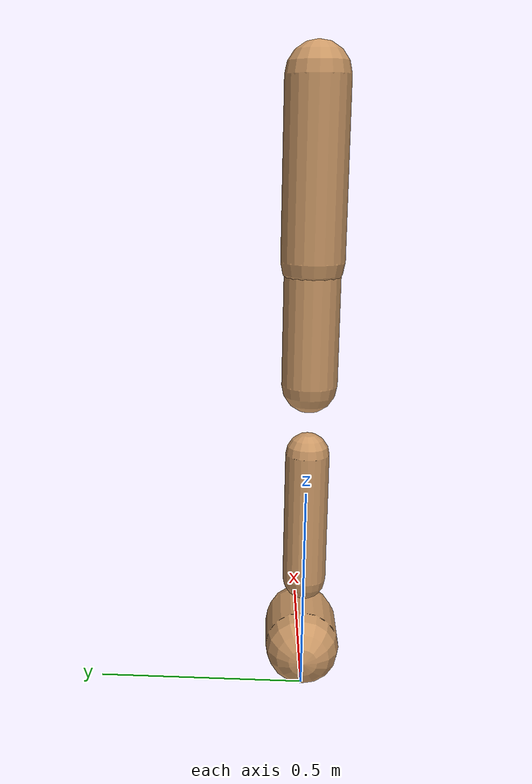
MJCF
<mujoco model="walker2d">
  <compiler angle="degree" coordinate="global" inertiafromgeom="true" />
  <default>
    <joint armature="0.01" damping=".1" limited="true" />
    <geom conaffinity="0" condim="3" contype="1" density="1000" friction="0.8 .1 .1" rgba="0.8 0.6 .4 1" />
  </default>
  <option integrator="RK4" timestep="0.002" />
  <worldbody>

    <body name="torso" pos="0 0 -0.35267125032691127">
      <joint armature="0" axis="1 0 0" damping="0" limited="false" name="ignorex" pos="0 0 0" stiffness="0" type="slide" />
      <joint armature="0" axis="0 0 1" damping="0" limited="false" name="ignorez" pos="0 0 0" ref="1.25" stiffness="0" type="slide" />
      <joint armature="0" axis="0 1 0" damping="0" limited="false" name="ignorey" pos="0 0 0" stiffness="0" type="hinge" />
      <geom fromto="0 0 1.45 0 0 1.05" name="torso_geom" size="0.0721879862109523" type="capsule" />
      <body name="thigh">
        <joint axis="0 -1 0" name="thigh_joint" pos="0 0 1.05" range="-150 0" type="hinge" />
        <geom fromto="0.0 0.0 1.05 0.0 0.0 0.7670548027864317" name="thigh_geom" size="0.06412325481278368" type="capsule" />
        <body name="leg" pos="0.0 0.0 0.1670548027864317">
          <joint axis="0 -1 0" name="leg_joint" pos="0 0 0.6" range="-150 0" type="hinge" />
          <geom fromto="0.0 0.0 0.6 0.0 0.0 0.2856164475404796" name="leg_geom" size="0.051298603850226936" type="capsule" />
          <body name="foot" pos="0.0 0.0 0.1856164475404796">
            <joint axis="0 -1 0" name="foot_joint" pos="0 0 0.1" range="-45 45" type="hinge" />
            <geom fromto="0.0 0.0 0.1 0.13128284471990717 0.0 0.1" name="foot_geom" size="0.08956367996018845" type="capsule" />
          </body>
        </body>
      </body>

      <body name="thigh_left">
        <joint axis="0 -1 0" name="thigh_left_joint" pos="0 0 1.05" range="-150 0" type="hinge" />
        <geom fromto="0.0 0.0 1.05 0.0 0.0 0.7670548027864317" name="thigh_left_geom" rgba=".7 .3 .6 1" size="0.06412325481278368" type="capsule" />
        <body name="leg_left" pos="0.0 0.0 0.1670548027864317">
          <joint axis="0 -1 0" name="leg_left_joint" pos="0 0 0.6" range="-150 0" type="hinge" />
          <geom fromto="0.0 0.0 0.6 0.0 0.0 0.2856164475404796" name="leg_left_geom" rgba=".7 .3 .6 1" size="0.051298603850226936" type="capsule" />
          <body name="foot_left" pos="0.0 0.0 0.1856164475404796">
            <joint axis="0 -1 0" name="foot_left_joint" pos="0 0 0.1" range="-45 45" type="hinge" />
            <geom fromto="0.0 0.0 0.1 0.13128284471990717 0.0 0.1" name="foot_left_geom" rgba=".7 .3 .6 1" size="0.08956367996018845" type="capsule" />
          </body>
        </body>
      </body>
    </body>
  </worldbody>
  <actuator>

    <motor ctrllimited="true" ctrlrange="-1.0 1.0" gear="100" joint="thigh_joint" />
    <motor ctrllimited="true" ctrlrange="-1.0 1.0" gear="100" joint="leg_joint" />
    <motor ctrllimited="true" ctrlrange="-1.0 1.0" gear="100" joint="foot_joint" />
    <motor ctrllimited="true" ctrlrange="-1.0 1.0" gear="100" joint="thigh_left_joint" />
    <motor ctrllimited="true" ctrlrange="-1.0 1.0" gear="100" joint="leg_left_joint" />
    <motor ctrllimited="true" ctrlrange="-1.0 1.0" gear="100" joint="foot_left_joint" />

  </actuator>
</mujoco>
